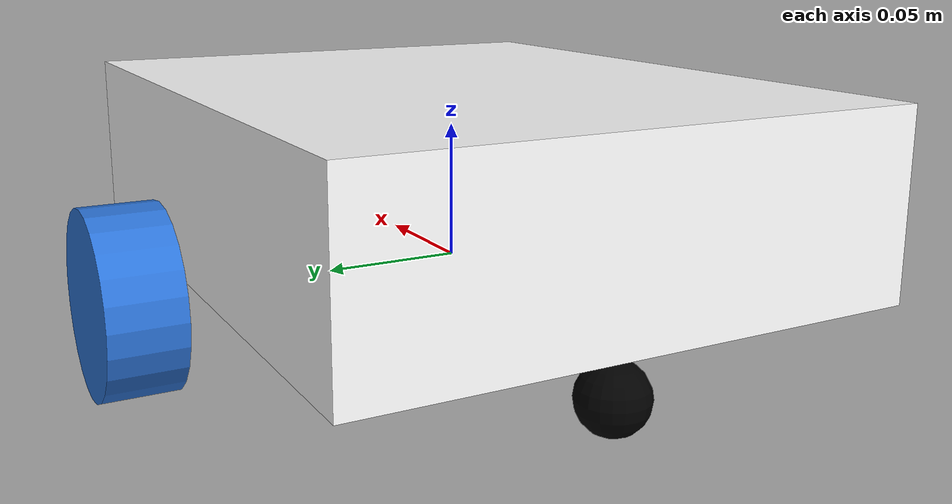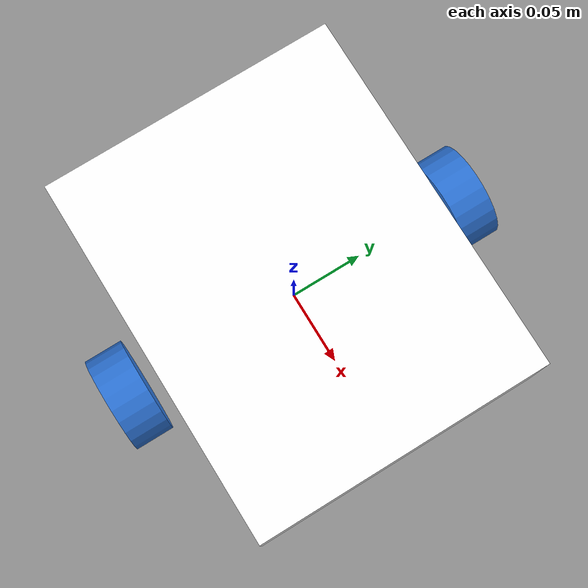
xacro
<?xml version="1.0"?>
<robot xmlns:xacro="http://www.ros.org/wiki/xacro" >

    <xacro:include filename="inertial_macros.xacro"/>

    <material name="white">
        <color rgba="1 1 1 1" />
    </material>

    <material name="black">
        <color rgba="0 0 0 1" />
    </material>

    <material name="orange">
        <color rgba="1 0.3 0.1 1" />
    </material>

    <material name="blue">
        <color rgba="0.1764 0.4588 0.8509 1.0" />
    </material>

    <material name="red">
        <color rgba="1 0 0 1" />
    </material>

    <material name="yellow">
        <color rgba="0.8784 0.6627 0.6627 1.0"/>
    </material>

    <material name="green">
        <color rgba="0.003 0.639 0.223 1.0"/>
    </material>

    <xacro:property name="chassis_length" value="0.25"/>
    <xacro:property name="chassis_width" value="0.2"/>
    <xacro:property name="chassis_height" value="0.06685"/>
    <xacro:property name="chassis_mass" value="3.0"/>
    <xacro:property name="wheel_radius" value="0.0325"/>
    <xacro:property name="wheel_thickness" value="0.026"/>
    <xacro:property name="wheel_mass" value="0.05"/>
    <xacro:property name="wheel_offset_x" value="0.125"/>
    <xacro:property name="wheel_offset_y" value="0.123"/>
    <xacro:property name="wheel_offset_z" value="0"/>
    <xacro:property name="caster_wheel_radius" value="0.0125"/>
    <xacro:property name="caster_wheel_mass" value="0.01"/>
    <xacro:property name="caster_wheel_offset_x" value="0.02"/>
    <xacro:property name="caster_wheel_offset_z" value="${wheel_offset_z - wheel_radius + caster_wheel_radius}"/>
    <xacro:property name="front_caster_wheel_radius" value="0.0075"/>
    <xacro:property name="front_caster_wheel_mass" value="0.01"/>
    <xacro:property name="front_caster_wheel_offset_x" value="0.24"/>
    <xacro:property name="front_caster_wheel_offset_z" value="${wheel_offset_z - wheel_radius + front_caster_wheel_radius}"/>

    <!-- BASE LINK -->

    <link name="base_link">

    </link>

    <!-- BASE_FOOTPRINT LINK -->

    <joint name="base_footprint_joint" type="fixed">
        <parent link="base_link"/>
        <child link="base_footprint"/>
        <origin xyz="0 0 0" rpy="0 0 0"/>
    </joint>

    <link name="base_footprint">
    </link>

    <!-- CHASSIS LINK -->

    <joint name="chassis_joint" type="fixed">
        <parent link="base_link"/>
        <child link="chassis_link"/>
        <origin xyz="-${wheel_offset_x} 0 ${wheel_offset_z}"/>
    </joint>

    <link name="chassis_link">
        <visual>
            <origin xyz="${chassis_length/2} 0 ${chassis_height/2}"/>
            <geometry>
                <box size="${chassis_length} ${chassis_width} ${chassis_height}"/>
            </geometry>
            <material name="white"/>
        </visual>
        <collision>
            <origin xyz="${chassis_length/2} 0 ${chassis_height/2}"/>
            <geometry>
                <box size="${chassis_length} ${chassis_width} ${chassis_height}"/>
            </geometry>
        </collision>

        <xacro:inertial_box mass="${chassis_mass}" x="${chassis_length}" y="${chassis_width}" z="${chassis_height}">
          <origin xyz="${chassis_length/2} 0 ${chassis_height/2}" rpy="0 0 0"/>
        </xacro:inertial_box>
    </link>
    <gazebo reference="chassis_link">
      <material>Gazebo/White</material>
    </gazebo>

    <!-- RIGHT WHEEL -->

    <joint name="right_wheel_joint" type="continuous">
        <parent link="base_link"/>
        <child link="right_wheel_link"/>
        <origin xyz="0 -${wheel_offset_y} ${wheel_offset_z}" rpy="${pi/2} 0 0" />
        <axis xyz="0 0 -1"/>
    </joint>
    <link name="right_wheel_link">
        <visual>
            <geometry>
                <cylinder radius="${wheel_radius}" length="${wheel_thickness}"/>
            </geometry>
            <material name="blue"/>
        </visual>
        <collision>
            <geometry>
                <sphere radius="${wheel_radius}"/>
            </geometry>
        </collision>
        <xacro:inertial_cylinder mass="${wheel_mass}" length="${wheel_thickness}" radius="${wheel_radius}">
          <origin xyz="0 0 0" rpy="0 0 0"/>
        </xacro:inertial_cylinder>
    </link>
    <gazebo reference="right_wheel_link">
      <material>Gazebo/Blue</material>
    </gazebo>

    <!-- LEFT WHEEL -->
    <joint name="left_wheel_joint" type="continuous">
        <parent link="base_link"/>
        <child link="left_wheel_link"/>
        <origin xyz="0 ${wheel_offset_y} ${wheel_offset_z}" rpy="-${pi/2} 0 0" />
        <axis xyz="0 0 1"/>
    </joint>
    <link name="left_wheel_link">
        <visual>
            <geometry>
                <cylinder radius="${wheel_radius}" length="${wheel_thickness}"/>
            </geometry>
            <material name="blue"/>
        </visual>
        <collision>
            <geometry>
                <sphere radius="${wheel_radius}"/>
            </geometry>
        </collision>
        <xacro:inertial_cylinder mass="${wheel_mass}" length="${wheel_thickness}" radius="${wheel_radius}">
            <origin xyz="0 0 0" rpy="0 0 0"/>
        </xacro:inertial_cylinder>
    </link>
    <gazebo reference="left_wheel_link">
      <material>Gazebo/Blue</material>
    </gazebo>

    <!-- CASTER WHEEL LINK -->

    <joint name="caster_wheel_joint" type="fixed">
        <parent link="chassis_link"/>
        <child link="caster_wheel"/>
        <origin xyz="${caster_wheel_offset_x} 0 ${caster_wheel_offset_z}"/>
    </joint>

    <link name="caster_wheel">
        <visual>
            <geometry>
                <sphere radius="${caster_wheel_radius}"/>
            </geometry>
            <material name="black"/>
        </visual>
        <collision>
            <geometry>
                <sphere radius="${caster_wheel_radius}"/>
            </geometry>
        </collision>
        <xacro:inertial_sphere mass="${caster_wheel_mass}" radius="${caster_wheel_radius}">
            <origin xyz="0 0 0" rpy="0 0 0"/>
        </xacro:inertial_sphere>
    </link>

    <gazebo reference="caster_wheel">
        <material>Gazebo/Black</material>
        <mu1 value="0.001"/>
        <mu2 value="0.001"/>
    </gazebo>

    <joint name="front_caster_wheel_joint" type="fixed">
        <parent link="chassis_link"/>
        <child link="front_caster_wheel"/>
        <origin xyz="${front_caster_wheel_offset_x} 0 ${front_caster_wheel_offset_z}"/>
    </joint>

    <link name="front_caster_wheel">
        <visual>
            <geometry>
                <sphere radius="${front_caster_wheel_radius}"/>
            </geometry>
            <material name="black"/>
        </visual>
        <collision>
            <geometry>
                <sphere radius="${front_caster_wheel_radius}"/>
            </geometry>
        </collision>
        <xacro:inertial_sphere mass="${front_caster_wheel_mass}" radius="${front_caster_wheel_radius}">
            <origin xyz="0 0 0" rpy="0 0 0"/>
        </xacro:inertial_sphere>
    </link>

    <gazebo reference="front_caster_wheel">
        <material>Gazebo/Black</material>
        <mu1 value="0.001"/>
        <mu2 value="0.001"/>
    </gazebo>

</robot>
